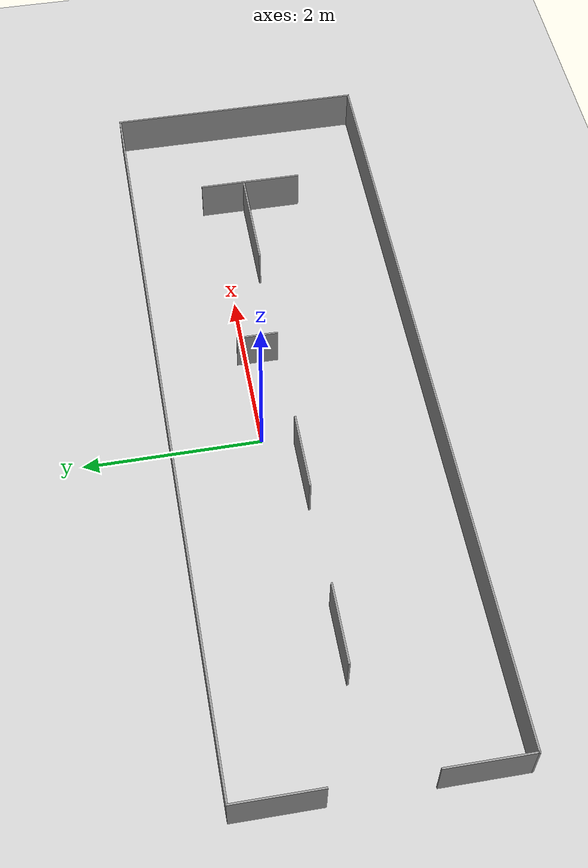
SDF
<sdf version="1.7">
 <world name="default">
  <light name="sun" type="directional">
   <pose>0 0 10 0 -0 0</pose>
   <diffuse>0.8 0.8 0.8 1</diffuse>
   <specular>0.2 0.2 0.2 1</specular>
   <attenuation>
    <range>1000</range>
    <constant>0.9</constant>
    <linear>0.01</linear>
    <quadratic>0.001</quadratic>
   </attenuation>
   <direction>-0.5 0.1 -0.9</direction>
   <spot><inner_angle>0</inner_angle><outer_angle>0</outer_angle><falloff>0</falloff></spot>
  </light>
  <model name="ground_plane">
   <static>1</static>
   <link name="link">
    <collision name="collision">
     <geometry><plane><normal>0 0 1</normal><size>100 100</size></plane></geometry>
     <surface>
      <contact><collide_bitmask>65535</collide_bitmask></contact>
      <friction><ode><mu>100</mu><mu2>50</mu2></ode></friction>
     </surface>
    </collision>
    <visual name="visual">
     <cast_shadows>0</cast_shadows>
     <geometry><plane><normal>0 0 1</normal><size>100 100</size></plane></geometry>
     <material>
      <script><uri>file://media/materials/scripts/gazebo.material</uri><name>Gazebo/Grey</name></script>
     </material>
    </visual>
   </link>
  </model>
  <gravity>0 0 -9.8</gravity>
  <magnetic_field>6e-06 2.3e-05 -4.2e-05</magnetic_field>
  <atmosphere type="adiabatic"/>
  <physics type="ode">
   <max_step_size>0.001</max_step_size>
   <real_time_factor>1</real_time_factor>
   <real_time_update_rate>1000</real_time_update_rate>
  </physics>
  <scene><ambient>0.4 0.4 0.4 1</ambient><background>0.7 0.7 0.7 1</background><shadows>1</shadows></scene>
  <spherical_coordinates>
   <surface_model>EARTH_WGS84</surface_model>
   <latitude_deg>0</latitude_deg>
   <longitude_deg>0</longitude_deg>
   <elevation>0</elevation>
   <heading_deg>0</heading_deg>
  </spherical_coordinates>
  <model name="haritamiz2">
   <pose>0.303902 -0.011762 0 0 -0 0</pose>
   <link name="Wall_0">
    <collision name="Wall_0_Collision">
     <geometry><box><size>0.95 0.02 0.5</size></box></geometry>
     <pose>0 0 0.25 0 -0 0</pose>
    </collision>
    <visual name="Wall_0_Visual">
     <pose>0 0 0.25 0 -0 0</pose>
     <geometry><box><size>0.95 0.02 0.5</size></box></geometry>
     <material>
      <script><uri>file://media/materials/scripts/gazebo.material</uri><name>Gazebo/Grey</name></script>
      <ambient>1 1 1 1</ambient>
     </material>
     <meta><layer>0</layer></meta>
    </visual>
    <pose>-4.49 0.57 0 0 -0 1.5708</pose>
   </link>
   <link name="Wall_15">
    <collision name="Wall_15_Collision">
     <geometry><box><size>0.9 0.02 0.5</size></box></geometry>
     <pose>0 0 0.25 0 -0 0</pose>
    </collision>
    <visual name="Wall_15_Visual">
     <pose>0 0 0.25 0 -0 0</pose>
     <geometry><box><size>0.9 0.02 0.5</size></box></geometry>
     <material>
      <script><uri>file://media/materials/scripts/gazebo.material</uri><name>Gazebo/Grey</name></script>
      <ambient>1 1 1 1</ambient>
     </material>
     <meta><layer>0</layer></meta>
    </visual>
    <pose>-2.87 -0.345 0 0 -0 0</pose>
   </link>
   <link name="Wall_2">
    <collision name="Wall_2_Collision">
     <geometry><box><size>9 0.02 0.5</size></box></geometry>
     <pose>0 0 0.25 0 -0 0</pose>
    </collision>
    <visual name="Wall_2_Visual">
     <pose>0 0 0.25 0 -0 0</pose>
     <geometry><box><size>9 0.02 0.5</size></box></geometry>
     <material>
      <script><uri>file://media/materials/scripts/gazebo.material</uri><name>Gazebo/Grey</name></script>
      <ambient>1 1 1 1</ambient>
     </material>
     <meta><layer>0</layer></meta>
    </visual>
    <pose>-0 1.035 0 0 -0 0</pose>
   </link>
   <link name="Wall_20">
    <collision name="Wall_20_Collision">
     <geometry><box><size>0.9 0.02 0.5</size></box></geometry>
     <pose>0 0 0.25 0 -0 0</pose>
    </collision>
    <visual name="Wall_20_Visual">
     <pose>0 0 0.25 0 -0 0</pose>
     <geometry><box><size>0.9 0.02 0.5</size></box></geometry>
     <material>
      <script><uri>file://media/materials/scripts/gazebo.material</uri><name>Gazebo/Grey</name></script>
      <ambient>1 1 1 1</ambient>
     </material>
     <meta><layer>0</layer></meta>
    </visual>
    <pose>-0.81 -0.345 0 0 -0 0</pose>
   </link>
   <link name="Wall_24">
    <collision name="Wall_24_Collision">
     <geometry><box><size>0.47 0.02 0.5</size></box></geometry>
     <pose>0 0 0.25 0 -0 0</pose>
    </collision>
    <visual name="Wall_24_Visual">
     <pose>0 0 0.25 0 -0 0</pose>
     <geometry><box><size>0.47 0.02 0.5</size></box></geometry>
     <material>
      <script><uri>file://media/materials/scripts/gazebo.material</uri><name>Gazebo/Grey</name></script>
      <ambient>1 1 1 1</ambient>
     </material>
     <meta><layer>0</layer></meta>
    </visual>
    <pose>0.81 -0.12 0 0 -0 1.5708</pose>
   </link>
   <link name="Wall_28">
    <collision name="Wall_28_Collision">
     <geometry><box><size>1.22398 0.02 0.5</size></box></geometry>
     <pose>0 0 0.25 0 -0 0</pose>
    </collision>
    <visual name="Wall_28_Visual">
     <pose>0 0 0.25 0 -0 0</pose>
     <geometry><box><size>1.22398 0.02 0.5</size></box></geometry>
     <material>
      <script><uri>file://media/materials/scripts/gazebo.material</uri><name>Gazebo/Grey</name></script>
      <ambient>1 1 1 1</ambient>
     </material>
     <meta><layer>0</layer></meta>
    </visual>
    <pose>2.59199 -0.345571 0 0 -0 -0.000948</pose>
   </link>
   <link name="Wall_4">
    <collision name="Wall_4_Collision">
     <geometry><box><size>2.97 0.02 0.5</size></box></geometry>
     <pose>0 0 0.25 0 -0 0</pose>
    </collision>
    <visual name="Wall_4_Visual">
     <pose>0 0 0.25 0 -0 0</pose>
     <geometry><box><size>2.97 0.02 0.5</size></box></geometry>
     <material>
      <script><uri>file://media/materials/scripts/gazebo.material</uri><name>Gazebo/Grey</name></script>
      <ambient>1 1 1 1</ambient>
     </material>
     <meta><layer>0</layer></meta>
    </visual>
    <pose>4.49 -0.44 0 0 -0 -1.5708</pose>
   </link>
   <link name="Wall_57">
    <collision name="Wall_57_Collision">
     <geometry><box><size>1.2 0.02 0.5</size></box></geometry>
     <pose>0 0 0.25 0 -0 0</pose>
    </collision>
    <visual name="Wall_57_Visual">
     <pose>0 0 0.25 0 -0 0</pose>
     <geometry><box><size>1.2 0.02 0.5</size></box></geometry>
     <material>
      <script><uri>file://media/materials/scripts/gazebo.material</uri><name>Gazebo/Grey</name></script>
      <ambient>1 1 1 1</ambient>
     </material>
     <meta><layer>0</layer></meta>
    </visual>
    <pose>3.19414 -0.426894 0 0 -0 -1.5708</pose>
   </link>
   <link name="Wall_6">
    <collision name="Wall_6_Collision">
     <geometry><box><size>9 0.02 0.5</size></box></geometry>
     <pose>0 0 0.25 0 -0 0</pose>
    </collision>
    <visual name="Wall_6_Visual">
     <pose>0 0 0.25 0 -0 0</pose>
     <geometry><box><size>9 0.02 0.5</size></box></geometry>
     <material>
      <script><uri>file://media/materials/scripts/gazebo.material</uri><name>Gazebo/Grey</name></script>
      <ambient>1 1 1 1</ambient>
     </material>
     <meta><layer>0</layer></meta>
    </visual>
    <pose>-0 -1.915 0 0 -0 3.14159</pose>
   </link>
   <link name="Wall_9">
    <collision name="Wall_9_Collision">
     <geometry><box><size>0.95 0.02 0.5</size></box></geometry>
     <pose>0 0 0.25 0 -0 0</pose>
    </collision>
    <visual name="Wall_9_Visual">
     <pose>0 0 0.25 0 -0 0</pose>
     <geometry><box><size>0.95 0.02 0.5</size></box></geometry>
     <material>
      <script><uri>file://media/materials/scripts/gazebo.material</uri><name>Gazebo/Grey</name></script>
      <ambient>1 1 1 1</ambient>
     </material>
     <meta><layer>0</layer></meta>
    </visual>
    <pose>-4.49 -1.45 0 0 -0 1.5708</pose>
   </link>
   <static>1</static>
  </model>
 </world>
</sdf>
